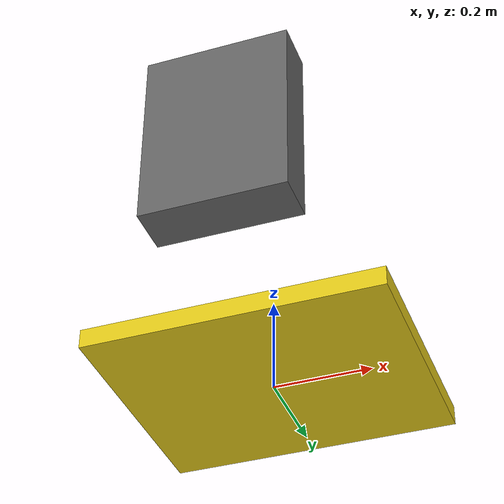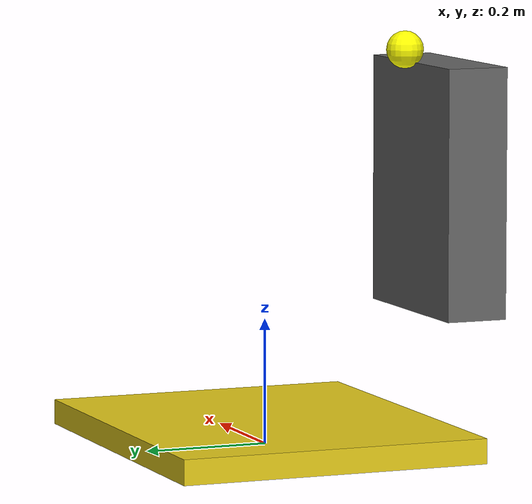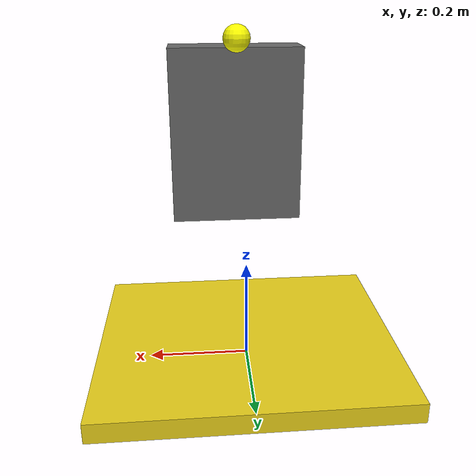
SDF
<?xml version="1.0"?>
<sdf version="1.6">
  <model name="charging_station">
    <static>true</static>

    <!-- Charging pad -->
    <link name="pad">
      <pose>0 0 0.02 0 0 0</pose>
      <visual name="visual">
        <geometry><box><size>0.6 0.5 0.04</size></box></geometry>
        <material>
          <ambient>0.8 0.7 0.1 1</ambient>
          <diffuse>0.9 0.8 0.1 1</diffuse>
        </material>
      </visual>
      <collision name="collision">
        <geometry><box><size>0.6 0.5 0.04</size></box></geometry>
      </collision>
    </link>

    <!-- Charger unit (wall-mounted box) -->
    <link name="charger_box">
      <pose>0.0 -0.3 0.4 0 0 0</pose>
      <visual name="visual">
        <geometry><box><size>0.3 0.1 0.4</size></box></geometry>
        <material>
          <ambient>0.3 0.3 0.3 1</ambient>
          <diffuse>0.4 0.4 0.4 1</diffuse>
        </material>
      </visual>
      <collision name="collision">
        <geometry><box><size>0.3 0.1 0.4</size></box></geometry>
      </collision>
    </link>

    <!-- Yellow indicator light -->
    <link name="indicator">
      <pose>0.0 -0.24 0.62 0 0 0</pose>
      <visual name="visual">
        <geometry><sphere><radius>0.03</radius></sphere></geometry>
        <material>
          <ambient>0.9 0.9 0.0 1</ambient>
          <diffuse>1.0 1.0 0.0 1</diffuse>
          <emissive>0.5 0.5 0.0 1</emissive>
        </material>
      </visual>
    </link>

  </model>
</sdf>
